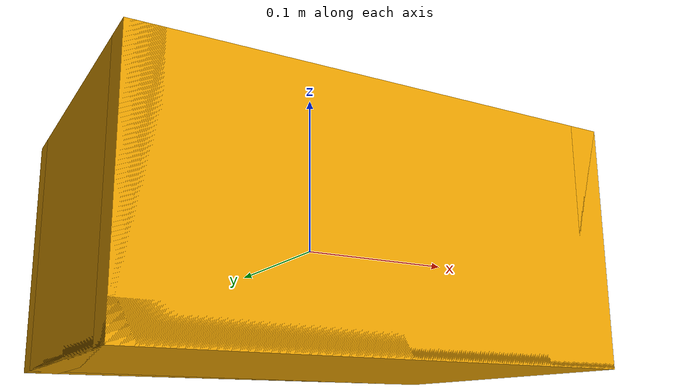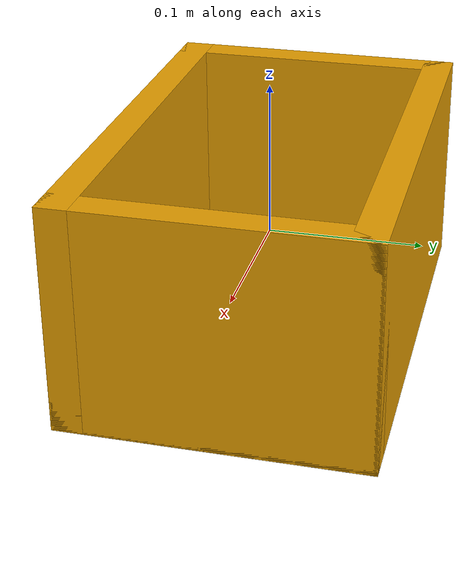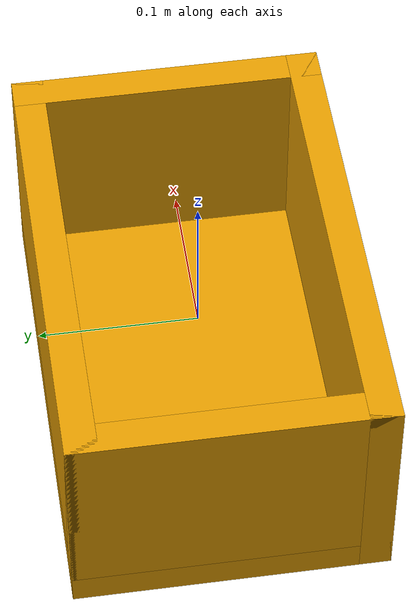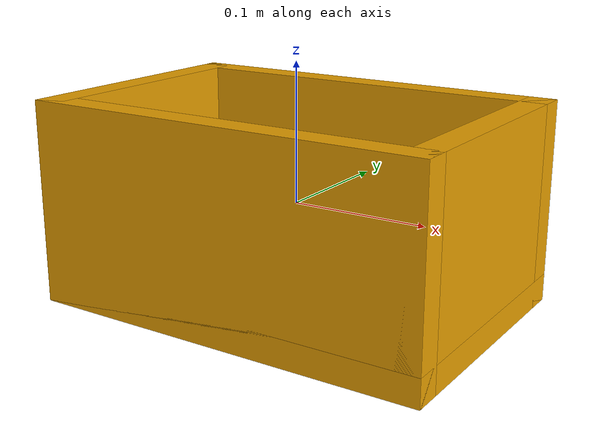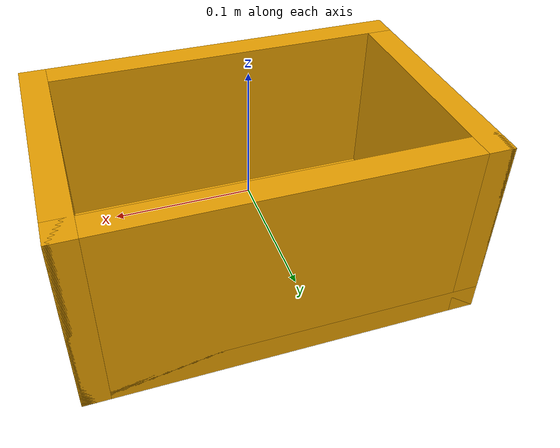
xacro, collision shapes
<robot  xmlns:xacro="http://ros.org/wiki/xacro" name="klt_model">
  <xacro:include filename="$(find levelManager)/lego_models/bin/common_properties.urdf.xacro" />

  <xacro:property name="mass" value="0.575" />

  <link name="klt">
    <inertial>
      <origin xyz="0.00012358 -0.00007882 -0.00089578" rpy="0 0 0" />
      <mass value="${mass}" />
      <inertia
        ixx="${mass *  0.007472041582202446}"
        ixy="${mass * -1.0940575783940914e-05}"
        ixz="${mass *  4.89988236783716e-07}"
        iyy="${mass *  0.014559482643509519}"
        iyz="${mass * -3.143030520392239e-07}"
        izz="${mass *  0.017079079407189855}" />
    </inertial>
    <visual>
      <origin xyz="0 0 0" rpy="0 0 0" />
      <geometry>
        <mesh filename="package://pbr_objects/meshes/klt/klt3147.obj" />
      </geometry>
    </visual>

    <!--klt collision model made up from boxes, klt bounding box as reported from dope : 0.297 0.197 0.1469-->

    <!-- klt base -->
    <collision>
      <origin xyz="0 0 -0.06345" rpy="0 0 0" /> <!--klt thickness = 0.02 ; (0.1469 - 0.02 = 0.1269) / 2-->
      <geometry>

            <box size="0.297 0.197 0.02" />
      </geometry>
    </collision>

    <!-- right klt wall -->
    <collision>
      <origin xyz="0 0.0885 0" rpy="0 0 0" />
      <geometry>
        <box size="0.297 0.02 0.1469" />
      </geometry>
    </collision>

    <!-- left klt wall -->
    <collision>
      <origin xyz="0 -0.0885 0" rpy="0 0 0" />
      <geometry>
        <box size="0.297 0.02 0.1469" />
      </geometry>
    </collision>

    <!-- front klt wall -->
    <collision>
      <origin xyz="0.1385 0 0" rpy="0 0 0" />
      <geometry>
        <box size="0.02 0.197 0.1469" />
      </geometry>
    </collision>

    <!-- back klt wall -->
    <collision>
      <origin xyz="-0.1385 0 0" rpy="0 0 0" />
      <geometry>
        <box size="0.02 0.197 0.1469" />
      </geometry>
    </collision>

  </link>
</robot>
